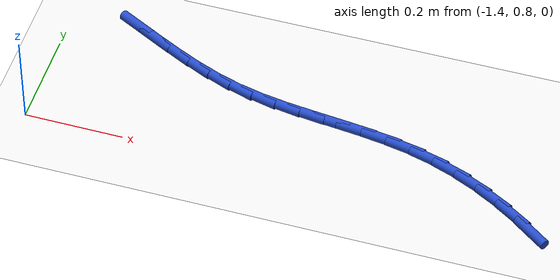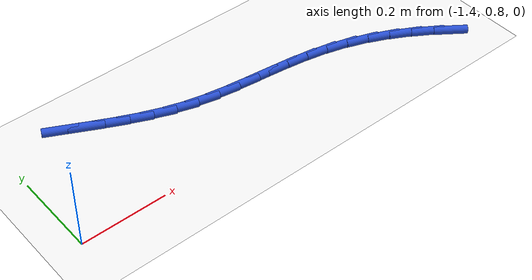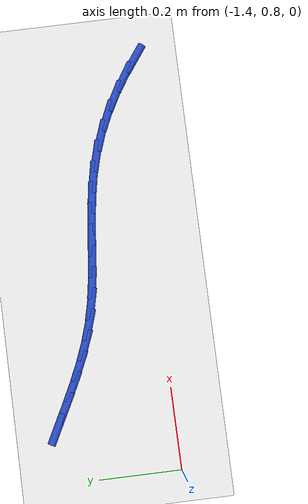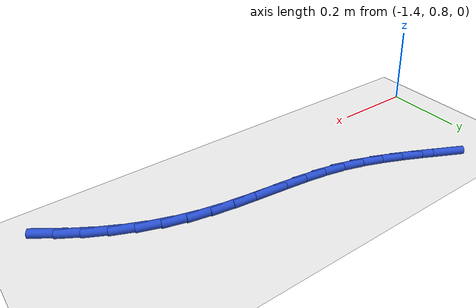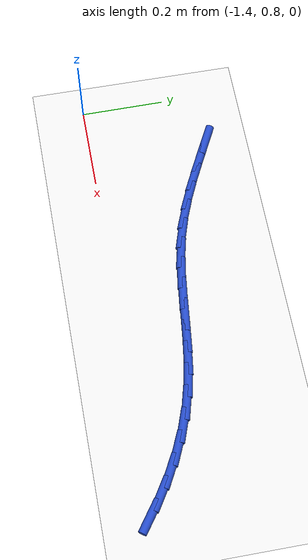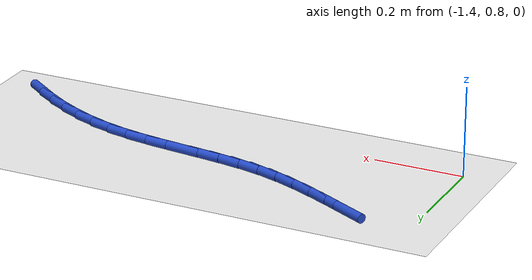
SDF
<sdf version="1.6">
 <world name="default">
  <model name="ground_plane">
   <static>1</static>
   <link name="link">
    <collision name="collision">
     <geometry><plane><normal>0 0 1</normal><size>100 100</size></plane></geometry>
     <surface><friction><ode><mu>100</mu><mu2>50</mu2></ode></friction></surface>
    </collision>
    <visual name="visual">
     <cast_shadows>0</cast_shadows>
     <geometry><plane><normal>0 0 1</normal><size>100 100</size></plane></geometry>
     <material>
      <script><uri>file://media/materials/scripts/gazebo.material</uri><name>Gazebo/WhiteGlow</name></script>
     </material>
    </visual>
   </link>
  </model>
  <model name="line">
   <link name="link_17">
    <pose>-0.38299573444376483 0.7883707918386542 0.01 0 1.57 -0.6261016402470653</pose>
    <collision name="collision">
     <geometry><cylinder><radius>0.01</radius><length>0.08</length></cylinder></geometry>
    </collision>
    <visual name="visual">
     <material>
      <script><name>Gazebo/Blue</name><uri>file://media/materials/scripts/gazebo.material</uri></script>
     </material>
     <geometry><cylinder><radius>0.01</radius><length>0.08</length></cylinder></geometry>
    </visual>
   </link>
   <link name="link_18">
    <pose>-0.4263691718115091 0.819736764191471 0.01 0 1.57 -0.5605069123011129</pose>
    <collision name="collision">
     <geometry><cylinder><radius>0.01</radius><length>0.08</length></cylinder></geometry>
    </collision>
    <visual name="visual">
     <material>
      <script><name>Gazebo/Blue</name><uri>file://media/materials/scripts/gazebo.material</uri></script>
     </material>
     <geometry><cylinder><radius>0.01</radius><length>0.08</length></cylinder></geometry>
    </visual>
   </link>
   <link name="link_19">
    <pose>-0.4713932122573493 0.8479963697987891 0.01 0 1.57 -0.4912515749986578</pose>
    <collision name="collision">
     <geometry><cylinder><radius>0.01</radius><length>0.08</length></cylinder></geometry>
    </collision>
    <visual name="visual">
     <material>
      <script><name>Gazebo/Blue</name><uri>file://media/materials/scripts/gazebo.material</uri></script>
     </material>
     <geometry><cylinder><radius>0.01</radius><length>0.08</length></cylinder></geometry>
    </visual>
   </link>
   <link name="link_20">
    <pose>-0.5179490109170857 0.8729035765090897 0.01 0 1.57 -0.41803888334708594</pose>
    <collision name="collision">
     <geometry><cylinder><radius>0.01</radius><length>0.08</length></cylinder></geometry>
    </collision>
    <visual name="visual">
     <material>
      <script><name>Gazebo/Blue</name><uri>file://media/materials/scripts/gazebo.material</uri></script>
     </material>
     <geometry><cylinder><radius>0.01</radius><length>0.08</length></cylinder></geometry>
    </visual>
   </link>
   <link name="link_21">
    <pose>-0.5659177229265181 0.8942123521708533 0.01 0 1.57 -0.34068993324473923</pose>
    <collision name="collision">
     <geometry><cylinder><radius>0.01</radius><length>0.08</length></cylinder></geometry>
    </collision>
    <visual name="visual">
     <material>
      <script><name>Gazebo/Blue</name><uri>file://media/materials/scripts/gazebo.material</uri></script>
     </material>
     <geometry><cylinder><radius>0.01</radius><length>0.08</length></cylinder></geometry>
    </visual>
   </link>
   <link name="link_22">
    <pose>-0.6151805034214464 0.9116766646325614 0.01 0 1.57 -0.259647384068537</pose>
    <collision name="collision">
     <geometry><cylinder><radius>0.01</radius><length>0.08</length></cylinder></geometry>
    </collision>
    <visual name="visual">
     <material>
      <script><name>Gazebo/Blue</name><uri>file://media/materials/scripts/gazebo.material</uri></script>
     </material>
     <geometry><cylinder><radius>0.01</radius><length>0.08</length></cylinder></geometry>
    </visual>
   </link>
   <link name="link_23">
    <pose>-0.6656144785606424 0.9250741479006304 0.01 0 1.57 -0.18749152417373546</pose>
    <collision name="collision">
     <geometry><cylinder><radius>0.01</radius><length>0.08</length></cylinder></geometry>
    </collision>
    <visual name="visual">
     <material>
      <script><name>Gazebo/Blue</name><uri>file://media/materials/scripts/gazebo.material</uri></script>
     </material>
     <geometry><cylinder><radius>0.01</radius><length>0.08</length></cylinder></geometry>
    </visual>
   </link>
   <link name="link_24">
    <pose>-0.7169881075798372 0.934820744054466 0.01 0 1.57 -0.13781468755106457</pose>
    <collision name="collision">
     <geometry><cylinder><radius>0.01</radius><length>0.08</length></cylinder></geometry>
    </collision>
    <visual name="visual">
     <material>
      <script><name>Gazebo/Blue</name><uri>file://media/materials/scripts/gazebo.material</uri></script>
     </material>
     <geometry><cylinder><radius>0.01</radius><length>0.08</length></cylinder></geometry>
    </visual>
   </link>
   <link name="link_25">
    <pose>-0.7689514720494542 0.9420277440184932 0.01 0 1.57 -0.110924155736938</pose>
    <collision name="collision">
     <geometry><cylinder><radius>0.01</radius><length>0.08</length></cylinder></geometry>
    </collision>
    <visual name="visual">
     <material>
      <script><name>Gazebo/Blue</name><uri>file://media/materials/scripts/gazebo.material</uri></script>
     </material>
     <geometry><cylinder><radius>0.01</radius><length>0.08</length></cylinder></geometry>
    </visual>
   </link>
   <link name="link_26">
    <pose>-0.8211486779530365 0.9478415392356746 0.01 0 1.57 -0.10649837597077871</pose>
    <collision name="collision">
     <geometry><cylinder><radius>0.01</radius><length>0.08</length></cylinder></geometry>
    </collision>
    <visual name="visual">
     <material>
      <script><name>Gazebo/Blue</name><uri>file://media/materials/scripts/gazebo.material</uri></script>
     </material>
     <geometry><cylinder><radius>0.01</radius><length>0.08</length></cylinder></geometry>
    </visual>
   </link>
   <link name="link_27">
    <pose>-0.8732238312741266 0.953408521148972 0.01 0 1.57 -0.12467765539147815</pose>
    <collision name="collision">
     <geometry><cylinder><radius>0.01</radius><length>0.08</length></cylinder></geometry>
    </collision>
    <visual name="visual">
     <material>
      <script><name>Gazebo/Blue</name><uri>file://media/materials/scripts/gazebo.material</uri></script>
     </material>
     <geometry><cylinder><radius>0.01</radius><length>0.08</length></cylinder></geometry>
    </visual>
   </link>
   <link name="link_28">
    <pose>-0.9248210379962669 0.9598750812013485 0.01 0 1.57 -0.16614458556105718</pose>
    <collision name="collision">
     <geometry><cylinder><radius>0.01</radius><length>0.08</length></cylinder></geometry>
    </collision>
    <visual name="visual">
     <material>
      <script><name>Gazebo/Blue</name><uri>file://media/materials/scripts/gazebo.material</uri></script>
     </material>
     <geometry><cylinder><radius>0.01</radius><length>0.08</length></cylinder></geometry>
    </visual>
   </link>
   <link name="link_29">
    <pose>-0.9755844041030004 0.9683876108357663 0.01 0 1.57 -0.23183757921613832</pose>
    <collision name="collision">
     <geometry><cylinder><radius>0.01</radius><length>0.08</length></cylinder></geometry>
    </collision>
    <visual name="visual">
     <material>
      <script><name>Gazebo/Blue</name><uri>file://media/materials/scripts/gazebo.material</uri></script>
     </material>
     <geometry><cylinder><radius>0.01</radius><length>0.08</length></cylinder></geometry>
    </visual>
   </link>
   <link name="link_30">
    <pose>-1.0251587374879436 0.9800912443837164 0.01 0 1.57 -0.312047706217449</pose>
    <collision name="collision">
     <geometry><cylinder><radius>0.01</radius><length>0.08</length></cylinder></geometry>
    </collision>
    <visual name="visual">
     <material>
      <script><name>Gazebo/Blue</name><uri>file://media/materials/scripts/gazebo.material</uri></script>
     </material>
     <geometry><cylinder><radius>0.01</radius><length>0.08</length></cylinder></geometry>
    </visual>
   </link>
   <link name="link_31">
    <pose>-1.073447172660953 0.9956684566922744 0.01 0 1.57 -0.37983506433896475</pose>
    <collision name="collision">
     <geometry><cylinder><radius>0.01</radius><length>0.08</length></cylinder></geometry>
    </collision>
    <visual name="visual">
     <material>
      <script><name>Gazebo/Blue</name><uri>file://media/materials/scripts/gazebo.material</uri></script>
     </material>
     <geometry><cylinder><radius>0.01</radius><length>0.08</length></cylinder></geometry>
    </visual>
   </link>
   <link name="link_32">
    <pose>-1.1209954835743152 1.0146507640374332 0.01 0 1.57 -0.42965821380719876</pose>
    <collision name="collision">
     <geometry><cylinder><radius>0.01</radius><length>0.08</length></cylinder></geometry>
    </collision>
    <visual name="visual">
     <material>
      <script><name>Gazebo/Blue</name><uri>file://media/materials/scripts/gazebo.material</uri></script>
     </material>
     <geometry><cylinder><radius>0.01</radius><length>0.08</length></cylinder></geometry>
    </visual>
   </link>
   <link name="link_33">
    <pose>-1.168447693986961 1.0363937186170487 0.01 0 1.57 -0.46129631175230285</pose>
    <collision name="collision">
     <geometry><cylinder><radius>0.01</radius><length>0.08</length></cylinder></geometry>
    </collision>
    <visual name="visual">
     <material>
      <script><name>Gazebo/Blue</name><uri>file://media/materials/scripts/gazebo.material</uri></script>
     </material>
     <geometry><cylinder><radius>0.01</radius><length>0.08</length></cylinder></geometry>
    </visual>
   </link>
   <link name="link_34">
    <pose>-1.2164478276578201 1.0602528726289766 0.01 0 1.57 -0.47546455752624156</pose>
    <collision name="collision">
     <geometry><cylinder><radius>0.01</radius><length>0.08</length></cylinder></geometry>
    </collision>
    <visual name="visual">
     <material>
      <script><name>Gazebo/Blue</name><uri>file://media/materials/scripts/gazebo.material</uri></script>
     </material>
     <geometry><cylinder><radius>0.01</radius><length>0.08</length></cylinder></geometry>
    </visual>
   </link>
   <link name="link_35">
    <pose>-1.265585394085164 1.0855518241268671 0.01 0 1.57 -0.4727689873372079</pose>
    <collision name="collision">
     <geometry><cylinder><radius>0.01</radius><length>0.08</length></cylinder></geometry>
    </collision>
    <visual name="visual">
     <material>
      <script><name>Gazebo/Blue</name><uri>file://media/materials/scripts/gazebo.material</uri></script>
     </material>
     <geometry><cylinder><radius>0.01</radius><length>0.08</length></cylinder></geometry>
    </visual>
   </link>
  </model>
 </world>
</sdf>
